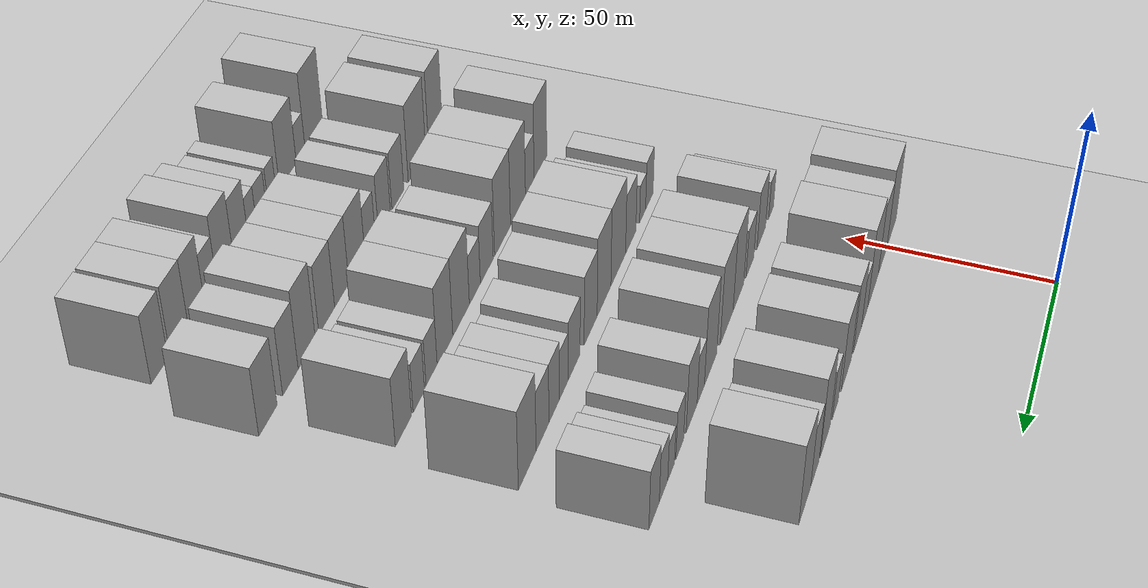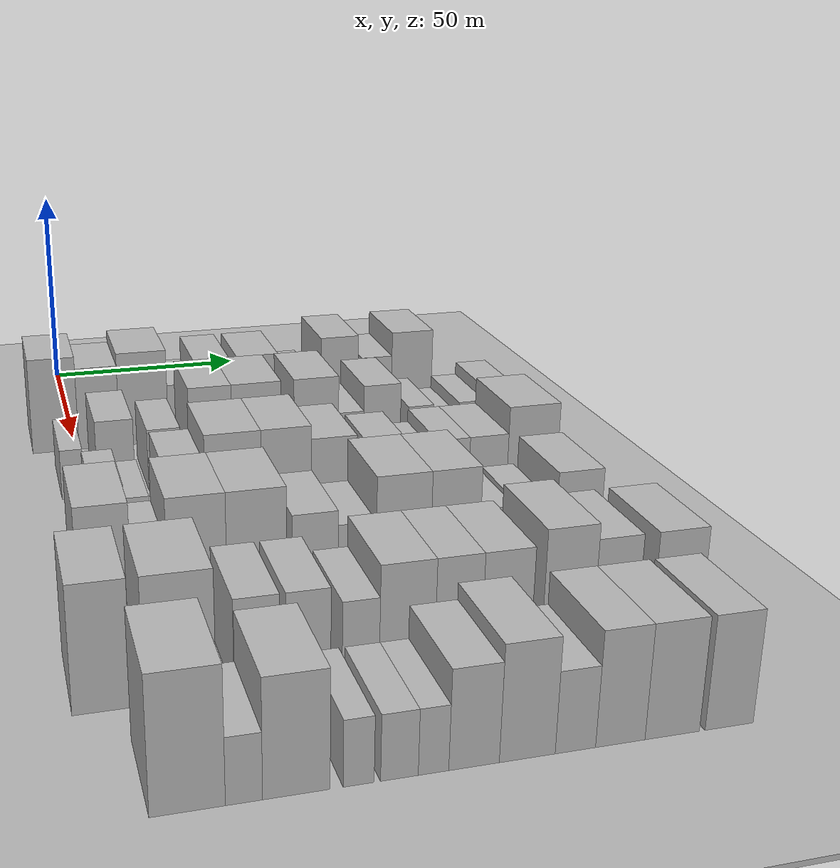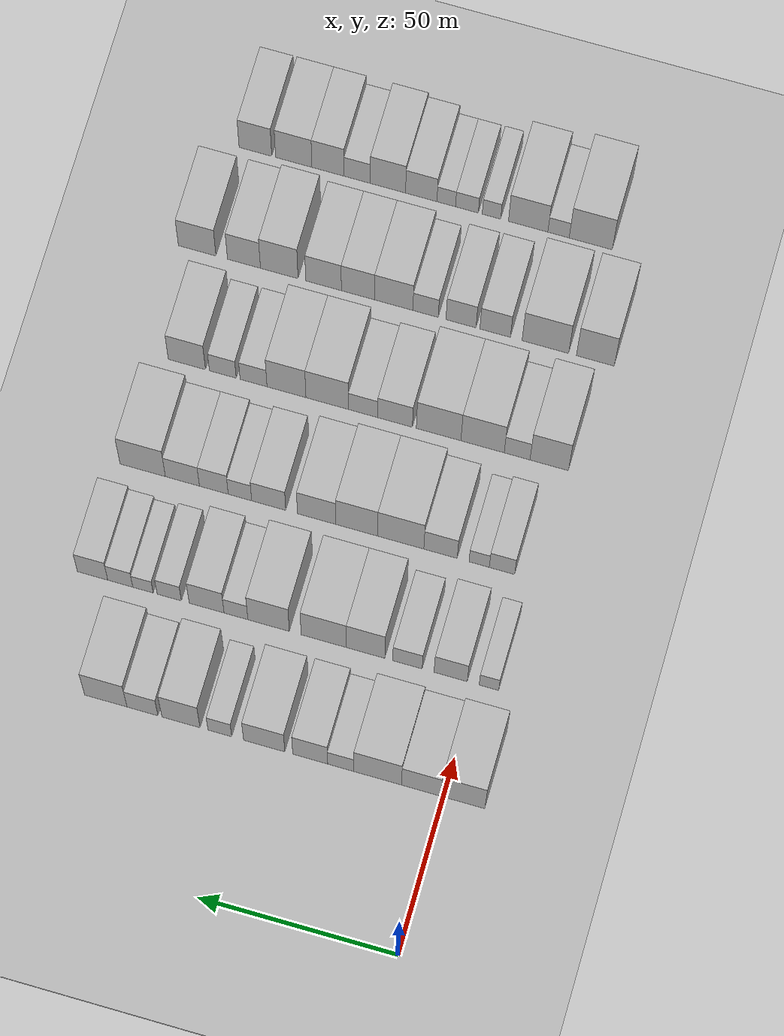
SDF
<sdf version="1.6">
 <world name="default">
  <include><name>ground_plane_1</name><uri>model://HANNAS_ground_plane</uri></include>
  <include>
   <name>ground_plane_2</name>
   <uri>model://HANNAS_ground_plane</uri>
   <pose>100 0 0  0 0 0</pose>
  </include>
  <model name="building_57">
   <static>1</static>
   <pose>50.0000 -4.7983 0 0.000000 0.000000 0.000000</pose>
   <link name="link">
    <pose>0 0 12.00 0 0 0</pose>
    <collision name="collision"><geometry><box><size>20.0000 11.0137 24.0000</size></box></geometry></collision>
    <visual name="visual">
     <cast_shadows>0</cast_shadows>
     <geometry><box><size>20.0000 11.0137 24.0000</size></box></geometry>
     <material>
      <script>
       <uri>model://HANNAS_wall/materials/scripts</uri>
       <uri>model://HANNAS_wall/materials/textures</uri>
       <name>vrc/HANNAS_wall</name>
      </script>
     </material>
    </visual>
   </link>
  </model>
  <model name="building_58">
   <static>1</static>
   <pose>50.0000 5.6625 0 0.000000 0.000000 0.000000</pose>
   <link name="link">
    <pose>0 0 10.50 0 0 0</pose>
    <collision name="collision"><geometry><box><size>20.0000 9.9080 21.0000</size></box></geometry></collision>
    <visual name="visual">
     <cast_shadows>0</cast_shadows>
     <geometry><box><size>20.0000 9.9080 21.0000</size></box></geometry>
     <material>
      <script>
       <uri>model://HANNAS_wall/materials/scripts</uri>
       <uri>model://HANNAS_wall/materials/textures</uri>
       <name>vrc/HANNAS_wall</name>
      </script>
     </material>
    </visual>
   </link>
  </model>
  <model name="building_59">
   <static>1</static>
   <pose>50.0000 16.5952 0 0.000000 0.000000 0.000000</pose>
   <link name="link">
    <pose>0 0 12.00 0 0 0</pose>
    <collision name="collision"><geometry><box><size>20.0000 11.9573 24.0000</size></box></geometry></collision>
    <visual name="visual">
     <cast_shadows>0</cast_shadows>
     <geometry><box><size>20.0000 11.9573 24.0000</size></box></geometry>
     <material>
      <script>
       <uri>model://HANNAS_wall/materials/scripts</uri>
       <uri>model://HANNAS_wall/materials/textures</uri>
       <name>vrc/HANNAS_wall</name>
      </script>
     </material>
    </visual>
   </link>
  </model>
  <model name="building_60">
   <static>1</static>
   <pose>50.0000 25.8689 0 0.000000 0.000000 0.000000</pose>
   <link name="link">
    <pose>0 0 7.50 0 0 0</pose>
    <collision name="collision"><geometry><box><size>20.0000 6.5901 15.0000</size></box></geometry></collision>
    <visual name="visual">
     <cast_shadows>0</cast_shadows>
     <geometry><box><size>20.0000 6.5901 15.0000</size></box></geometry>
     <material>
      <script>
       <uri>model://HANNAS_wall/materials/scripts</uri>
       <uri>model://HANNAS_wall/materials/textures</uri>
       <name>vrc/HANNAS_wall</name>
      </script>
     </material>
    </visual>
   </link>
  </model>
  <model name="building_61">
   <static>1</static>
   <pose>50.0000 33.5676 0 0.000000 0.000000 0.000000</pose>
   <link name="link">
    <pose>0 0 10.50 0 0 0</pose>
    <collision name="collision"><geometry><box><size>20.0000 8.8073 21.0000</size></box></geometry></collision>
    <visual name="visual">
     <cast_shadows>0</cast_shadows>
     <geometry><box><size>20.0000 8.8073 21.0000</size></box></geometry>
     <material>
      <script>
       <uri>model://HANNAS_wall/materials/scripts</uri>
       <uri>model://HANNAS_wall/materials/textures</uri>
       <name>vrc/HANNAS_wall</name>
      </script>
     </material>
    </visual>
   </link>
  </model>
  <model name="building_62">
   <static>1</static>
   <pose>50.0000 45.1729 0 0.000000 0.000000 0.000000</pose>
   <link name="link">
    <pose>0 0 10.50 0 0 0</pose>
    <collision name="collision"><geometry><box><size>20.0000 10.4034 21.0000</size></box></geometry></collision>
    <visual name="visual">
     <cast_shadows>0</cast_shadows>
     <geometry><box><size>20.0000 10.4034 21.0000</size></box></geometry>
     <material>
      <script>
       <uri>model://HANNAS_wall/materials/scripts</uri>
       <uri>model://HANNAS_wall/materials/textures</uri>
       <name>vrc/HANNAS_wall</name>
      </script>
     </material>
    </visual>
   </link>
  </model>
  <model name="building_63">
   <static>1</static>
   <pose>50.0000 56.3753 0 0.000000 0.000000 0.000000</pose>
   <link name="link">
    <pose>0 0 7.50 0 0 0</pose>
    <collision name="collision"><geometry><box><size>20.0000 6.0014 15.0000</size></box></geometry></collision>
    <visual name="visual">
     <cast_shadows>0</cast_shadows>
     <geometry><box><size>20.0000 6.0014 15.0000</size></box></geometry>
     <material>
      <script>
       <uri>model://HANNAS_wall/materials/scripts</uri>
       <uri>model://HANNAS_wall/materials/textures</uri>
       <name>vrc/HANNAS_wall</name>
      </script>
     </material>
    </visual>
   </link>
  </model>
  <model name="building_64">
   <static>1</static>
   <pose>50.0000 66.2069 0 0.000000 0.000000 0.000000</pose>
   <link name="link">
    <pose>0 0 12.00 0 0 0</pose>
    <collision name="collision"><geometry><box><size>20.0000 9.6620 24.0000</size></box></geometry></collision>
    <visual name="visual">
     <cast_shadows>0</cast_shadows>
     <geometry><box><size>20.0000 9.6620 24.0000</size></box></geometry>
     <material>
      <script>
       <uri>model://HANNAS_wall/materials/scripts</uri>
       <uri>model://HANNAS_wall/materials/textures</uri>
       <name>vrc/HANNAS_wall</name>
      </script>
     </material>
    </visual>
   </link>
  </model>
  <model name="building_65">
   <static>1</static>
   <pose>50.0000 75.9701 0 0.000000 0.000000 0.000000</pose>
   <link name="link">
    <pose>0 0 9.00 0 0 0</pose>
    <collision name="collision"><geometry><box><size>20.0000 7.8644 18.0000</size></box></geometry></collision>
    <visual name="visual">
     <cast_shadows>0</cast_shadows>
     <geometry><box><size>20.0000 7.8644 18.0000</size></box></geometry>
     <material>
      <script>
       <uri>model://HANNAS_wall/materials/scripts</uri>
       <uri>model://HANNAS_wall/materials/textures</uri>
       <name>vrc/HANNAS_wall</name>
      </script>
     </material>
    </visual>
   </link>
  </model>
  <model name="building_66">
   <static>1</static>
   <pose>50.0000 85.2618 0 0.000000 0.000000 0.000000</pose>
   <link name="link">
    <pose>0 0 12.00 0 0 0</pose>
    <collision name="collision"><geometry><box><size>20.0000 10.7190 24.0000</size></box></geometry></collision>
    <visual name="visual">
     <cast_shadows>0</cast_shadows>
     <geometry><box><size>20.0000 10.7190 24.0000</size></box></geometry>
     <material>
      <script>
       <uri>model://HANNAS_wall/materials/scripts</uri>
       <uri>model://HANNAS_wall/materials/textures</uri>
       <name>vrc/HANNAS_wall</name>
      </script>
     </material>
    </visual>
   </link>
  </model>
  <model name="building_170">
   <static>1</static>
   <pose>79.0000 -3.1844 0 0.000000 0.000000 0.000000</pose>
   <link name="link">
    <pose>0 0 6.00 0 0 0</pose>
    <collision name="collision"><geometry><box><size>20.0000 4.9274 12.0000</size></box></geometry></collision>
    <visual name="visual">
     <cast_shadows>0</cast_shadows>
     <geometry><box><size>20.0000 4.9274 12.0000</size></box></geometry>
     <material>
      <script>
       <uri>model://HANNAS_wall/materials/scripts</uri>
       <uri>model://HANNAS_wall/materials/textures</uri>
       <name>vrc/HANNAS_wall</name>
      </script>
     </material>
    </visual>
   </link>
  </model>
  <model name="building_171">
   <static>1</static>
   <pose>79.0000 6.4791 0 0.000000 0.000000 0.000000</pose>
   <link name="link">
    <pose>0 0 9.00 0 0 0</pose>
    <collision name="collision"><geometry><box><size>20.0000 8.3995 18.0000</size></box></geometry></collision>
    <visual name="visual">
     <cast_shadows>0</cast_shadows>
     <geometry><box><size>20.0000 8.3995 18.0000</size></box></geometry>
     <material>
      <script>
       <uri>model://HANNAS_wall/materials/scripts</uri>
       <uri>model://HANNAS_wall/materials/textures</uri>
       <name>vrc/HANNAS_wall</name>
      </script>
     </material>
    </visual>
   </link>
  </model>
  <model name="building_172">
   <static>1</static>
   <pose>79.0000 17.4072 0 0.000000 0.000000 0.000000</pose>
   <link name="link">
    <pose>0 0 7.50 0 0 0</pose>
    <collision name="collision"><geometry><box><size>20.0000 7.4567 15.0000</size></box></geometry></collision>
    <visual name="visual">
     <cast_shadows>0</cast_shadows>
     <geometry><box><size>20.0000 7.4567 15.0000</size></box></geometry>
     <material>
      <script>
       <uri>model://HANNAS_wall/materials/scripts</uri>
       <uri>model://HANNAS_wall/materials/textures</uri>
       <name>vrc/HANNAS_wall</name>
      </script>
     </material>
    </visual>
   </link>
  </model>
  <model name="building_173">
   <static>1</static>
   <pose>79.0000 28.0051 0 0.000000 0.000000 0.000000</pose>
   <link name="link">
    <pose>0 0 12.00 0 0 0</pose>
    <collision name="collision"><geometry><box><size>20.0000 9.7390 24.0000</size></box></geometry></collision>
    <visual name="visual">
     <cast_shadows>0</cast_shadows>
     <geometry><box><size>20.0000 9.7390 24.0000</size></box></geometry>
     <material>
      <script>
       <uri>model://HANNAS_wall/materials/scripts</uri>
       <uri>model://HANNAS_wall/materials/textures</uri>
       <name>vrc/HANNAS_wall</name>
      </script>
     </material>
    </visual>
   </link>
  </model>
  <model name="building_174">
   <static>1</static>
   <pose>79.0000 38.6088 0 0.000000 0.000000 0.000000</pose>
   <link name="link">
    <pose>0 0 12.00 0 0 0</pose>
    <collision name="collision"><geometry><box><size>20.0000 11.4685 24.0000</size></box></geometry></collision>
    <visual name="visual">
     <cast_shadows>0</cast_shadows>
     <geometry><box><size>20.0000 11.4685 24.0000</size></box></geometry>
     <material>
      <script>
       <uri>model://HANNAS_wall/materials/scripts</uri>
       <uri>model://HANNAS_wall/materials/textures</uri>
       <name>vrc/HANNAS_wall</name>
      </script>
     </material>
    </visual>
   </link>
  </model>
  <model name="building_175">
   <static>1</static>
   <pose>79.0000 52.6056 0 0.000000 0.000000 0.000000</pose>
   <link name="link">
    <pose>0 0 12.00 0 0 0</pose>
    <collision name="collision"><geometry><box><size>20.0000 10.5251 24.0000</size></box></geometry></collision>
    <visual name="visual">
     <cast_shadows>0</cast_shadows>
     <geometry><box><size>20.0000 10.5251 24.0000</size></box></geometry>
     <material>
      <script>
       <uri>model://HANNAS_wall/materials/scripts</uri>
       <uri>model://HANNAS_wall/materials/textures</uri>
       <name>vrc/HANNAS_wall</name>
      </script>
     </material>
    </visual>
   </link>
  </model>
  <model name="building_176">
   <static>1</static>
   <pose>79.0000 60.9086 0 0.000000 0.000000 0.000000</pose>
   <link name="link">
    <pose>0 0 7.50 0 0 0</pose>
    <collision name="collision"><geometry><box><size>20.0000 6.0808 15.0000</size></box></geometry></collision>
    <visual name="visual">
     <cast_shadows>0</cast_shadows>
     <geometry><box><size>20.0000 6.0808 15.0000</size></box></geometry>
     <material>
      <script>
       <uri>model://HANNAS_wall/materials/scripts</uri>
       <uri>model://HANNAS_wall/materials/textures</uri>
       <name>vrc/HANNAS_wall</name>
      </script>
     </material>
    </visual>
   </link>
  </model>
  <model name="building_177">
   <static>1</static>
   <pose>79.0000 68.3858 0 0.000000 0.000000 0.000000</pose>
   <link name="link">
    <pose>0 0 10.50 0 0 0</pose>
    <collision name="collision"><geometry><box><size>20.0000 8.8737 21.0000</size></box></geometry></collision>
    <visual name="visual">
     <cast_shadows>0</cast_shadows>
     <geometry><box><size>20.0000 8.8737 21.0000</size></box></geometry>
     <material>
      <script>
       <uri>model://HANNAS_wall/materials/scripts</uri>
       <uri>model://HANNAS_wall/materials/textures</uri>
       <name>vrc/HANNAS_wall</name>
      </script>
     </material>
    </visual>
   </link>
  </model>
  <model name="building_178">
   <static>1</static>
   <pose>79.0000 77.9151 0 0.000000 0.000000 0.000000</pose>
   <link name="link">
    <pose>0 0 7.50 0 0 0</pose>
    <collision name="collision"><geometry><box><size>20.0000 6.1849 15.0000</size></box></geometry></collision>
    <visual name="visual">
     <cast_shadows>0</cast_shadows>
     <geometry><box><size>20.0000 6.1849 15.0000</size></box></geometry>
     <material>
      <script>
       <uri>model://HANNAS_wall/materials/scripts</uri>
       <uri>model://HANNAS_wall/materials/textures</uri>
       <name>vrc/HANNAS_wall</name>
      </script>
     </material>
    </visual>
   </link>
  </model>
  <model name="building_179">
   <static>1</static>
   <pose>79.0000 84.6122 0 0.000000 0.000000 0.000000</pose>
   <link name="link">
    <pose>0 0 6.00 0 0 0</pose>
    <collision name="collision"><geometry><box><size>20.0000 5.2093 12.0000</size></box></geometry></collision>
    <visual name="visual">
     <cast_shadows>0</cast_shadows>
     <geometry><box><size>20.0000 5.2093 12.0000</size></box></geometry>
     <material>
      <script>
       <uri>model://HANNAS_wall/materials/scripts</uri>
       <uri>model://HANNAS_wall/materials/textures</uri>
       <name>vrc/HANNAS_wall</name>
      </script>
     </material>
    </visual>
   </link>
  </model>
  <model name="building_180">
   <static>1</static>
   <pose>79.0000 90.4151 0 0.000000 0.000000 0.000000</pose>
   <link name="link">
    <pose>0 0 7.50 0 0 0</pose>
    <collision name="collision"><geometry><box><size>20.0000 6.3964 15.0000</size></box></geometry></collision>
    <visual name="visual">
     <cast_shadows>0</cast_shadows>
     <geometry><box><size>20.0000 6.3964 15.0000</size></box></geometry>
     <material>
      <script>
       <uri>model://HANNAS_wall/materials/scripts</uri>
       <uri>model://HANNAS_wall/materials/textures</uri>
       <name>vrc/HANNAS_wall</name>
      </script>
     </material>
    </visual>
   </link>
  </model>
  <model name="building_181">
   <static>1</static>
   <pose>79.0000 97.4869 0 0.000000 0.000000 0.000000</pose>
   <link name="link">
    <pose>0 0 9.00 0 0 0</pose>
    <collision name="collision"><geometry><box><size>20.0000 7.7473 18.0000</size></box></geometry></collision>
    <visual name="visual">
     <cast_shadows>0</cast_shadows>
     <geometry><box><size>20.0000 7.7473 18.0000</size></box></geometry>
     <material>
      <script>
       <uri>model://HANNAS_wall/materials/scripts</uri>
       <uri>model://HANNAS_wall/materials/textures</uri>
       <name>vrc/HANNAS_wall</name>
      </script>
     </material>
    </visual>
   </link>
  </model>
  <model name="building_283">
   <static>1</static>
   <pose>108.0000 1.6561 0 0.000000 0.000000 0.000000</pose>
   <link name="link">
    <pose>0 0 7.50 0 0 0</pose>
    <collision name="collision"><geometry><box><size>20.0000 6.4531 15.0000</size></box></geometry></collision>
    <visual name="visual">
     <cast_shadows>0</cast_shadows>
     <geometry><box><size>20.0000 6.4531 15.0000</size></box></geometry>
     <material>
      <script>
       <uri>model://HANNAS_wall/materials/scripts</uri>
       <uri>model://HANNAS_wall/materials/textures</uri>
       <name>vrc/HANNAS_wall</name>
      </script>
     </material>
    </visual>
   </link>
  </model>
  <model name="building_284">
   <static>1</static>
   <pose>108.0000 7.4560 0 0.000000 0.000000 0.000000</pose>
   <link name="link">
    <pose>0 0 6.00 0 0 0</pose>
    <collision name="collision"><geometry><box><size>20.0000 5.1467 12.0000</size></box></geometry></collision>
    <visual name="visual">
     <cast_shadows>0</cast_shadows>
     <geometry><box><size>20.0000 5.1467 12.0000</size></box></geometry>
     <material>
      <script>
       <uri>model://HANNAS_wall/materials/scripts</uri>
       <uri>model://HANNAS_wall/materials/textures</uri>
       <name>vrc/HANNAS_wall</name>
      </script>
     </material>
    </visual>
   </link>
  </model>
  <model name="building_285">
   <static>1</static>
   <pose>108.0000 17.2810 0 0.000000 0.000000 0.000000</pose>
   <link name="link">
    <pose>0 0 9.00 0 0 0</pose>
    <collision name="collision"><geometry><box><size>20.0000 8.5032 18.0000</size></box></geometry></collision>
    <visual name="visual">
     <cast_shadows>0</cast_shadows>
     <geometry><box><size>20.0000 8.5032 18.0000</size></box></geometry>
     <material>
      <script>
       <uri>model://HANNAS_wall/materials/scripts</uri>
       <uri>model://HANNAS_wall/materials/textures</uri>
       <name>vrc/HANNAS_wall</name>
      </script>
     </material>
    </visual>
   </link>
  </model>
  <model name="building_286">
   <static>1</static>
   <pose>108.0000 27.4141 0 0.000000 0.000000 0.000000</pose>
   <link name="link">
    <pose>0 0 12.00 0 0 0</pose>
    <collision name="collision"><geometry><box><size>20.0000 11.7630 24.0000</size></box></geometry></collision>
    <visual name="visual">
     <cast_shadows>0</cast_shadows>
     <geometry><box><size>20.0000 11.7630 24.0000</size></box></geometry>
     <material>
      <script>
       <uri>model://HANNAS_wall/materials/scripts</uri>
       <uri>model://HANNAS_wall/materials/textures</uri>
       <name>vrc/HANNAS_wall</name>
      </script>
     </material>
    </visual>
   </link>
  </model>
  <model name="building_287">
   <static>1</static>
   <pose>108.0000 38.6370 0 0.000000 0.000000 0.000000</pose>
   <link name="link">
    <pose>0 0 12.00 0 0 0</pose>
    <collision name="collision"><geometry><box><size>20.0000 10.6828 24.0000</size></box></geometry></collision>
    <visual name="visual">
     <cast_shadows>0</cast_shadows>
     <geometry><box><size>20.0000 10.6828 24.0000</size></box></geometry>
     <material>
      <script>
       <uri>model://HANNAS_wall/materials/scripts</uri>
       <uri>model://HANNAS_wall/materials/textures</uri>
       <name>vrc/HANNAS_wall</name>
      </script>
     </material>
    </visual>
   </link>
  </model>
  <model name="building_288">
   <static>1</static>
   <pose>108.0000 48.8752 0 0.000000 0.000000 0.000000</pose>
   <link name="link">
    <pose>0 0 10.50 0 0 0</pose>
    <collision name="collision"><geometry><box><size>20.0000 9.7936 21.0000</size></box></geometry></collision>
    <visual name="visual">
     <cast_shadows>0</cast_shadows>
     <geometry><box><size>20.0000 9.7936 21.0000</size></box></geometry>
     <material>
      <script>
       <uri>model://HANNAS_wall/materials/scripts</uri>
       <uri>model://HANNAS_wall/materials/textures</uri>
       <name>vrc/HANNAS_wall</name>
      </script>
     </material>
    </visual>
   </link>
  </model>
  <model name="building_289">
   <static>1</static>
   <pose>108.0000 61.1291 0 0.000000 0.000000 0.000000</pose>
   <link name="link">
    <pose>0 0 9.00 0 0 0</pose>
    <collision name="collision"><geometry><box><size>20.0000 8.7141 18.0000</size></box></geometry></collision>
    <visual name="visual">
     <cast_shadows>0</cast_shadows>
     <geometry><box><size>20.0000 8.7141 18.0000</size></box></geometry>
     <material>
      <script>
       <uri>model://HANNAS_wall/materials/scripts</uri>
       <uri>model://HANNAS_wall/materials/textures</uri>
       <name>vrc/HANNAS_wall</name>
      </script>
     </material>
    </visual>
   </link>
  </model>
  <model name="building_290">
   <static>1</static>
   <pose>108.0000 68.4956 0 0.000000 0.000000 0.000000</pose>
   <link name="link">
    <pose>0 0 7.50 0 0 0</pose>
    <collision name="collision"><geometry><box><size>20.0000 6.0188 15.0000</size></box></geometry></collision>
    <visual name="visual">
     <cast_shadows>0</cast_shadows>
     <geometry><box><size>20.0000 6.0188 15.0000</size></box></geometry>
     <material>
      <script>
       <uri>model://HANNAS_wall/materials/scripts</uri>
       <uri>model://HANNAS_wall/materials/textures</uri>
       <name>vrc/HANNAS_wall</name>
      </script>
     </material>
    </visual>
   </link>
  </model>
  <model name="building_291">
   <static>1</static>
   <pose>108.0000 75.1930 0 0.000000 0.000000 0.000000</pose>
   <link name="link">
    <pose>0 0 9.00 0 0 0</pose>
    <collision name="collision"><geometry><box><size>20.0000 7.3761 18.0000</size></box></geometry></collision>
    <visual name="visual">
     <cast_shadows>0</cast_shadows>
     <geometry><box><size>20.0000 7.3761 18.0000</size></box></geometry>
     <material>
      <script>
       <uri>model://HANNAS_wall/materials/scripts</uri>
       <uri>model://HANNAS_wall/materials/textures</uri>
       <name>vrc/HANNAS_wall</name>
      </script>
     </material>
    </visual>
   </link>
  </model>
  <model name="building_292">
   <static>1</static>
   <pose>108.0000 83.2609 0 0.000000 0.000000 0.000000</pose>
   <link name="link">
    <pose>0 0 9.00 0 0 0</pose>
    <collision name="collision"><geometry><box><size>20.0000 8.7597 18.0000</size></box></geometry></collision>
    <visual name="visual">
     <cast_shadows>0</cast_shadows>
     <geometry><box><size>20.0000 8.7597 18.0000</size></box></geometry>
     <material>
      <script>
       <uri>model://HANNAS_wall/materials/scripts</uri>
       <uri>model://HANNAS_wall/materials/textures</uri>
       <name>vrc/HANNAS_wall</name>
      </script>
     </material>
    </visual>
   </link>
  </model>
  <model name="building_293">
   <static>1</static>
   <pose>108.0000 93.4723 0 0.000000 0.000000 0.000000</pose>
   <link name="link">
    <pose>0 0 12.00 0 0 0</pose>
    <collision name="collision"><geometry><box><size>20.0000 11.6630 24.0000</size></box></geometry></collision>
    <visual name="visual">
     <cast_shadows>0</cast_shadows>
     <geometry><box><size>20.0000 11.6630 24.0000</size></box></geometry>
     <material>
      <script>
       <uri>model://HANNAS_wall/materials/scripts</uri>
       <uri>model://HANNAS_wall/materials/textures</uri>
       <name>vrc/HANNAS_wall</name>
      </script>
     </material>
    </visual>
   </link>
  </model>
  <model name="building_391">
   <static>1</static>
   <pose>137.0000 -2.2840 0 0.000000 0.000000 0.000000</pose>
   <link name="link">
    <pose>0 0 12.00 0 0 0</pose>
    <collision name="collision"><geometry><box><size>20.0000 9.8416 24.0000</size></box></geometry></collision>
    <visual name="visual">
     <cast_shadows>0</cast_shadows>
     <geometry><box><size>20.0000 9.8416 24.0000</size></box></geometry>
     <material>
      <script>
       <uri>model://HANNAS_wall/materials/scripts</uri>
       <uri>model://HANNAS_wall/materials/textures</uri>
       <name>vrc/HANNAS_wall</name>
      </script>
     </material>
    </visual>
   </link>
  </model>
  <model name="building_392">
   <static>1</static>
   <pose>137.0000 5.9213 0 0.000000 0.000000 0.000000</pose>
   <link name="link">
    <pose>0 0 7.50 0 0 0</pose>
    <collision name="collision"><geometry><box><size>20.0000 6.5691 15.0000</size></box></geometry></collision>
    <visual name="visual">
     <cast_shadows>0</cast_shadows>
     <geometry><box><size>20.0000 6.5691 15.0000</size></box></geometry>
     <material>
      <script>
       <uri>model://HANNAS_wall/materials/scripts</uri>
       <uri>model://HANNAS_wall/materials/textures</uri>
       <name>vrc/HANNAS_wall</name>
      </script>
     </material>
    </visual>
   </link>
  </model>
  <model name="building_393">
   <static>1</static>
   <pose>137.0000 14.7529 0 0.000000 0.000000 0.000000</pose>
   <link name="link">
    <pose>0 0 12.00 0 0 0</pose>
    <collision name="collision"><geometry><box><size>20.0000 11.0941 24.0000</size></box></geometry></collision>
    <visual name="visual">
     <cast_shadows>0</cast_shadows>
     <geometry><box><size>20.0000 11.0941 24.0000</size></box></geometry>
     <material>
      <script>
       <uri>model://HANNAS_wall/materials/scripts</uri>
       <uri>model://HANNAS_wall/materials/textures</uri>
       <name>vrc/HANNAS_wall</name>
      </script>
     </material>
    </visual>
   </link>
  </model>
  <model name="building_394">
   <static>1</static>
   <pose>137.0000 26.0189 0 0.000000 0.000000 0.000000</pose>
   <link name="link">
    <pose>0 0 12.00 0 0 0</pose>
    <collision name="collision"><geometry><box><size>20.0000 11.4378 24.0000</size></box></geometry></collision>
    <visual name="visual">
     <cast_shadows>0</cast_shadows>
     <geometry><box><size>20.0000 11.4378 24.0000</size></box></geometry>
     <material>
      <script>
       <uri>model://HANNAS_wall/materials/scripts</uri>
       <uri>model://HANNAS_wall/materials/textures</uri>
       <name>vrc/HANNAS_wall</name>
      </script>
     </material>
    </visual>
   </link>
  </model>
  <model name="building_395">
   <static>1</static>
   <pose>137.0000 37.2032 0 0.000000 0.000000 0.000000</pose>
   <link name="link">
    <pose>0 0 9.00 0 0 0</pose>
    <collision name="collision"><geometry><box><size>20.0000 8.9308 18.0000</size></box></geometry></collision>
    <visual name="visual">
     <cast_shadows>0</cast_shadows>
     <geometry><box><size>20.0000 8.9308 18.0000</size></box></geometry>
     <material>
      <script>
       <uri>model://HANNAS_wall/materials/scripts</uri>
       <uri>model://HANNAS_wall/materials/textures</uri>
       <name>vrc/HANNAS_wall</name>
      </script>
     </material>
    </visual>
   </link>
  </model>
  <model name="building_396">
   <static>1</static>
   <pose>137.0000 45.4095 0 0.000000 0.000000 0.000000</pose>
   <link name="link">
    <pose>0 0 7.50 0 0 0</pose>
    <collision name="collision"><geometry><box><size>20.0000 7.4818 15.0000</size></box></geometry></collision>
    <visual name="visual">
     <cast_shadows>0</cast_shadows>
     <geometry><box><size>20.0000 7.4818 15.0000</size></box></geometry>
     <material>
      <script>
       <uri>model://HANNAS_wall/materials/scripts</uri>
       <uri>model://HANNAS_wall/materials/textures</uri>
       <name>vrc/HANNAS_wall</name>
      </script>
     </material>
    </visual>
   </link>
  </model>
  <model name="building_397">
   <static>1</static>
   <pose>137.0000 54.6229 0 0.000000 0.000000 0.000000</pose>
   <link name="link">
    <pose>0 0 12.00 0 0 0</pose>
    <collision name="collision"><geometry><box><size>20.0000 10.9449 24.0000</size></box></geometry></collision>
    <visual name="visual">
     <cast_shadows>0</cast_shadows>
     <geometry><box><size>20.0000 10.9449 24.0000</size></box></geometry>
     <material>
      <script>
       <uri>model://HANNAS_wall/materials/scripts</uri>
       <uri>model://HANNAS_wall/materials/textures</uri>
       <name>vrc/HANNAS_wall</name>
      </script>
     </material>
    </visual>
   </link>
  </model>
  <model name="building_398">
   <static>1</static>
   <pose>137.0000 65.1071 0 0.000000 0.000000 0.000000</pose>
   <link name="link">
    <pose>0 0 12.00 0 0 0</pose>
    <collision name="collision"><geometry><box><size>20.0000 10.0236 24.0000</size></box></geometry></collision>
    <visual name="visual">
     <cast_shadows>0</cast_shadows>
     <geometry><box><size>20.0000 10.0236 24.0000</size></box></geometry>
     <material>
      <script>
       <uri>model://HANNAS_wall/materials/scripts</uri>
       <uri>model://HANNAS_wall/materials/textures</uri>
       <name>vrc/HANNAS_wall</name>
      </script>
     </material>
    </visual>
   </link>
  </model>
  <model name="building_399">
   <static>1</static>
   <pose>137.0000 73.5882 0 0.000000 0.000000 0.000000</pose>
   <link name="link">
    <pose>0 0 7.50 0 0 0</pose>
    <collision name="collision"><geometry><box><size>20.0000 6.9386 15.0000</size></box></geometry></collision>
    <visual name="visual">
     <cast_shadows>0</cast_shadows>
     <geometry><box><size>20.0000 6.9386 15.0000</size></box></geometry>
     <material>
      <script>
       <uri>model://HANNAS_wall/materials/scripts</uri>
       <uri>model://HANNAS_wall/materials/textures</uri>
       <name>vrc/HANNAS_wall</name>
      </script>
     </material>
    </visual>
   </link>
  </model>
  <model name="building_400">
   <static>1</static>
   <pose>137.0000 81.5265 0 0.000000 0.000000 0.000000</pose>
   <link name="link">
    <pose>0 0 7.50 0 0 0</pose>
    <collision name="collision"><geometry><box><size>20.0000 6.9379 15.0000</size></box></geometry></collision>
    <visual name="visual">
     <cast_shadows>0</cast_shadows>
     <geometry><box><size>20.0000 6.9379 15.0000</size></box></geometry>
     <material>
      <script>
       <uri>model://HANNAS_wall/materials/scripts</uri>
       <uri>model://HANNAS_wall/materials/textures</uri>
       <name>vrc/HANNAS_wall</name>
      </script>
     </material>
    </visual>
   </link>
  </model>
  <model name="building_401">
   <static>1</static>
   <pose>137.0000 90.7979 0 0.000000 0.000000 0.000000</pose>
   <link name="link">
    <pose>0 0 10.50 0 0 0</pose>
    <collision name="collision"><geometry><box><size>20.0000 9.6050 21.0000</size></box></geometry></collision>
    <visual name="visual">
     <cast_shadows>0</cast_shadows>
     <geometry><box><size>20.0000 9.6050 21.0000</size></box></geometry>
     <material>
      <script>
       <uri>model://HANNAS_wall/materials/scripts</uri>
       <uri>model://HANNAS_wall/materials/textures</uri>
       <name>vrc/HANNAS_wall</name>
      </script>
     </material>
    </visual>
   </link>
  </model>
  <model name="building_505">
   <static>1</static>
   <pose>166.0000 -6.1053 0 0.000000 0.000000 0.000000</pose>
   <link name="link">
    <pose>0 0 12.00 0 0 0</pose>
    <collision name="collision"><geometry><box><size>20.0000 9.7061 24.0000</size></box></geometry></collision>
    <visual name="visual">
     <cast_shadows>0</cast_shadows>
     <geometry><box><size>20.0000 9.7061 24.0000</size></box></geometry>
     <material>
      <script>
       <uri>model://HANNAS_wall/materials/scripts</uri>
       <uri>model://HANNAS_wall/materials/textures</uri>
       <name>vrc/HANNAS_wall</name>
      </script>
     </material>
    </visual>
   </link>
  </model>
  <model name="building_506">
   <static>1</static>
   <pose>166.0000 6.7424 0 0.000000 0.000000 0.000000</pose>
   <link name="link">
    <pose>0 0 12.00 0 0 0</pose>
    <collision name="collision"><geometry><box><size>20.0000 11.9894 24.0000</size></box></geometry></collision>
    <visual name="visual">
     <cast_shadows>0</cast_shadows>
     <geometry><box><size>20.0000 11.9894 24.0000</size></box></geometry>
     <material>
      <script>
       <uri>model://HANNAS_wall/materials/scripts</uri>
       <uri>model://HANNAS_wall/materials/textures</uri>
       <name>vrc/HANNAS_wall</name>
      </script>
     </material>
    </visual>
   </link>
  </model>
  <model name="building_507">
   <static>1</static>
   <pose>166.0000 19.6723 0 0.000000 0.000000 0.000000</pose>
   <link name="link">
    <pose>0 0 9.00 0 0 0</pose>
    <collision name="collision"><geometry><box><size>20.0000 7.8706 18.0000</size></box></geometry></collision>
    <visual name="visual">
     <cast_shadows>0</cast_shadows>
     <geometry><box><size>20.0000 7.8706 18.0000</size></box></geometry>
     <material>
      <script>
       <uri>model://HANNAS_wall/materials/scripts</uri>
       <uri>model://HANNAS_wall/materials/textures</uri>
       <name>vrc/HANNAS_wall</name>
      </script>
     </material>
    </visual>
   </link>
  </model>
  <model name="building_508">
   <static>1</static>
   <pose>166.0000 28.4803 0 0.000000 0.000000 0.000000</pose>
   <link name="link">
    <pose>0 0 9.00 0 0 0</pose>
    <collision name="collision"><geometry><box><size>20.0000 7.7455 18.0000</size></box></geometry></collision>
    <visual name="visual">
     <cast_shadows>0</cast_shadows>
     <geometry><box><size>20.0000 7.7455 18.0000</size></box></geometry>
     <material>
      <script>
       <uri>model://HANNAS_wall/materials/scripts</uri>
       <uri>model://HANNAS_wall/materials/textures</uri>
       <name>vrc/HANNAS_wall</name>
      </script>
     </material>
    </visual>
   </link>
  </model>
  <model name="building_509">
   <static>1</static>
   <pose>166.0000 37.6300 0 0.000000 0.000000 0.000000</pose>
   <link name="link">
    <pose>0 0 7.50 0 0 0</pose>
    <collision name="collision"><geometry><box><size>20.0000 6.5539 15.0000</size></box></geometry></collision>
    <visual name="visual">
     <cast_shadows>0</cast_shadows>
     <geometry><box><size>20.0000 6.5539 15.0000</size></box></geometry>
     <material>
      <script>
       <uri>model://HANNAS_wall/materials/scripts</uri>
       <uri>model://HANNAS_wall/materials/textures</uri>
       <name>vrc/HANNAS_wall</name>
      </script>
     </material>
    </visual>
   </link>
  </model>
  <model name="building_510">
   <static>1</static>
   <pose>166.0000 45.8739 0 0.000000 0.000000 0.000000</pose>
   <link name="link">
    <pose>0 0 10.50 0 0 0</pose>
    <collision name="collision"><geometry><box><size>20.0000 9.9338 21.0000</size></box></geometry></collision>
    <visual name="visual">
     <cast_shadows>0</cast_shadows>
     <geometry><box><size>20.0000 9.9338 21.0000</size></box></geometry>
     <material>
      <script>
       <uri>model://HANNAS_wall/materials/scripts</uri>
       <uri>model://HANNAS_wall/materials/textures</uri>
       <name>vrc/HANNAS_wall</name>
      </script>
     </material>
    </visual>
   </link>
  </model>
  <model name="building_511">
   <static>1</static>
   <pose>166.0000 55.1198 0 0.000000 0.000000 0.000000</pose>
   <link name="link">
    <pose>0 0 10.50 0 0 0</pose>
    <collision name="collision"><geometry><box><size>20.0000 8.5581 21.0000</size></box></geometry></collision>
    <visual name="visual">
     <cast_shadows>0</cast_shadows>
     <geometry><box><size>20.0000 8.5581 21.0000</size></box></geometry>
     <material>
      <script>
       <uri>model://HANNAS_wall/materials/scripts</uri>
       <uri>model://HANNAS_wall/materials/textures</uri>
       <name>vrc/HANNAS_wall</name>
      </script>
     </material>
    </visual>
   </link>
  </model>
  <model name="building_512">
   <static>1</static>
   <pose>166.0000 64.0115 0 0.000000 0.000000 0.000000</pose>
   <link name="link">
    <pose>0 0 10.50 0 0 0</pose>
    <collision name="collision"><geometry><box><size>20.0000 9.2253 21.0000</size></box></geometry></collision>
    <visual name="visual">
     <cast_shadows>0</cast_shadows>
     <geometry><box><size>20.0000 9.2253 21.0000</size></box></geometry>
     <material>
      <script>
       <uri>model://HANNAS_wall/materials/scripts</uri>
       <uri>model://HANNAS_wall/materials/textures</uri>
       <name>vrc/HANNAS_wall</name>
      </script>
     </material>
    </visual>
   </link>
  </model>
  <model name="building_513">
   <static>1</static>
   <pose>166.0000 75.4998 0 0.000000 0.000000 0.000000</pose>
   <link name="link">
    <pose>0 0 12.00 0 0 0</pose>
    <collision name="collision"><geometry><box><size>20.0000 9.7514 24.0000</size></box></geometry></collision>
    <visual name="visual">
     <cast_shadows>0</cast_shadows>
     <geometry><box><size>20.0000 9.7514 24.0000</size></box></geometry>
     <material>
      <script>
       <uri>model://HANNAS_wall/materials/scripts</uri>
       <uri>model://HANNAS_wall/materials/textures</uri>
       <name>vrc/HANNAS_wall</name>
      </script>
     </material>
    </visual>
   </link>
  </model>
  <model name="building_514">
   <static>1</static>
   <pose>166.0000 84.6563 0 0.000000 0.000000 0.000000</pose>
   <link name="link">
    <pose>0 0 10.50 0 0 0</pose>
    <collision name="collision"><geometry><box><size>20.0000 8.5615 21.0000</size></box></geometry></collision>
    <visual name="visual">
     <cast_shadows>0</cast_shadows>
     <geometry><box><size>20.0000 8.5615 21.0000</size></box></geometry>
     <material>
      <script>
       <uri>model://HANNAS_wall/materials/scripts</uri>
       <uri>model://HANNAS_wall/materials/textures</uri>
       <name>vrc/HANNAS_wall</name>
      </script>
     </material>
    </visual>
   </link>
  </model>
  <model name="building_515">
   <static>1</static>
   <pose>166.0000 96.8240 0 0.000000 0.000000 0.000000</pose>
   <link name="link">
    <pose>0 0 10.50 0 0 0</pose>
    <collision name="collision"><geometry><box><size>20.0000 9.7738 21.0000</size></box></geometry></collision>
    <visual name="visual">
     <cast_shadows>0</cast_shadows>
     <geometry><box><size>20.0000 9.7738 21.0000</size></box></geometry>
     <material>
      <script>
       <uri>model://HANNAS_wall/materials/scripts</uri>
       <uri>model://HANNAS_wall/materials/textures</uri>
       <name>vrc/HANNAS_wall</name>
      </script>
     </material>
    </visual>
   </link>
  </model>
  <model name="building_612">
   <static>1</static>
   <pose>195.0000 3.0519 0 0.000000 0.000000 0.000000</pose>
   <link name="link">
    <pose>0 0 12.00 0 0 0</pose>
    <collision name="collision"><geometry><box><size>20.0000 11.1505 24.0000</size></box></geometry></collision>
    <visual name="visual">
     <cast_shadows>0</cast_shadows>
     <geometry><box><size>20.0000 11.1505 24.0000</size></box></geometry>
     <material>
      <script>
       <uri>model://HANNAS_wall/materials/scripts</uri>
       <uri>model://HANNAS_wall/materials/textures</uri>
       <name>vrc/HANNAS_wall</name>
      </script>
     </material>
    </visual>
   </link>
  </model>
  <model name="building_613">
   <static>1</static>
   <pose>195.0000 11.3844 0 0.000000 0.000000 0.000000</pose>
   <link name="link">
    <pose>0 0 6.00 0 0 0</pose>
    <collision name="collision"><geometry><box><size>20.0000 5.5144 12.0000</size></box></geometry></collision>
    <visual name="visual">
     <cast_shadows>0</cast_shadows>
     <geometry><box><size>20.0000 5.5144 12.0000</size></box></geometry>
     <material>
      <script>
       <uri>model://HANNAS_wall/materials/scripts</uri>
       <uri>model://HANNAS_wall/materials/textures</uri>
       <name>vrc/HANNAS_wall</name>
      </script>
     </material>
    </visual>
   </link>
  </model>
  <model name="building_614">
   <static>1</static>
   <pose>195.0000 19.2505 0 0.000000 0.000000 0.000000</pose>
   <link name="link">
    <pose>0 0 10.50 0 0 0</pose>
    <collision name="collision"><geometry><box><size>20.0000 10.2178 21.0000</size></box></geometry></collision>
    <visual name="visual">
     <cast_shadows>0</cast_shadows>
     <geometry><box><size>20.0000 10.2178 21.0000</size></box></geometry>
     <material>
      <script>
       <uri>model://HANNAS_wall/materials/scripts</uri>
       <uri>model://HANNAS_wall/materials/textures</uri>
       <name>vrc/HANNAS_wall</name>
      </script>
     </material>
    </visual>
   </link>
  </model>
  <model name="building_615">
   <static>1</static>
   <pose>195.0000 28.7602 0 0.000000 0.000000 0.000000</pose>
   <link name="link">
    <pose>0 0 6.00 0 0 0</pose>
    <collision name="collision"><geometry><box><size>20.0000 4.8017 12.0000</size></box></geometry></collision>
    <visual name="visual">
     <cast_shadows>0</cast_shadows>
     <geometry><box><size>20.0000 4.8017 12.0000</size></box></geometry>
     <material>
      <script>
       <uri>model://HANNAS_wall/materials/scripts</uri>
       <uri>model://HANNAS_wall/materials/textures</uri>
       <name>vrc/HANNAS_wall</name>
      </script>
     </material>
    </visual>
   </link>
  </model>
  <model name="building_616">
   <static>1</static>
   <pose>195.0000 35.1229 0 0.000000 0.000000 0.000000</pose>
   <link name="link">
    <pose>0 0 6.00 0 0 0</pose>
    <collision name="collision"><geometry><box><size>20.0000 5.9237 12.0000</size></box></geometry></collision>
    <visual name="visual">
     <cast_shadows>0</cast_shadows>
     <geometry><box><size>20.0000 5.9237 12.0000</size></box></geometry>
     <material>
      <script>
       <uri>model://HANNAS_wall/materials/scripts</uri>
       <uri>model://HANNAS_wall/materials/textures</uri>
       <name>vrc/HANNAS_wall</name>
      </script>
     </material>
    </visual>
   </link>
  </model>
  <model name="building_617">
   <static>1</static>
   <pose>195.0000 40.5064 0 0.000000 0.000000 0.000000</pose>
   <link name="link">
    <pose>0 0 6.00 0 0 0</pose>
    <collision name="collision"><geometry><box><size>20.0000 4.8431 12.0000</size></box></geometry></collision>
    <visual name="visual">
     <cast_shadows>0</cast_shadows>
     <geometry><box><size>20.0000 4.8431 12.0000</size></box></geometry>
     <material>
      <script>
       <uri>model://HANNAS_wall/materials/scripts</uri>
       <uri>model://HANNAS_wall/materials/textures</uri>
       <name>vrc/HANNAS_wall</name>
      </script>
     </material>
    </visual>
   </link>
  </model>
  <model name="building_618">
   <static>1</static>
   <pose>195.0000 47.0125 0 0.000000 0.000000 0.000000</pose>
   <link name="link">
    <pose>0 0 9.00 0 0 0</pose>
    <collision name="collision"><geometry><box><size>20.0000 8.1691 18.0000</size></box></geometry></collision>
    <visual name="visual">
     <cast_shadows>0</cast_shadows>
     <geometry><box><size>20.0000 8.1691 18.0000</size></box></geometry>
     <material>
      <script>
       <uri>model://HANNAS_wall/materials/scripts</uri>
       <uri>model://HANNAS_wall/materials/textures</uri>
       <name>vrc/HANNAS_wall</name>
      </script>
     </material>
    </visual>
   </link>
  </model>
  <model name="building_619">
   <static>1</static>
   <pose>195.0000 55.6974 0 0.000000 0.000000 0.000000</pose>
   <link name="link">
    <pose>0 0 10.50 0 0 0</pose>
    <collision name="collision"><geometry><box><size>20.0000 9.2008 21.0000</size></box></geometry></collision>
    <visual name="visual">
     <cast_shadows>0</cast_shadows>
     <geometry><box><size>20.0000 9.2008 21.0000</size></box></geometry>
     <material>
      <script>
       <uri>model://HANNAS_wall/materials/scripts</uri>
       <uri>model://HANNAS_wall/materials/textures</uri>
       <name>vrc/HANNAS_wall</name>
      </script>
     </material>
    </visual>
   </link>
  </model>
  <model name="building_620">
   <static>1</static>
   <pose>195.0000 63.6844 0 0.000000 0.000000 0.000000</pose>
   <link name="link">
    <pose>0 0 7.50 0 0 0</pose>
    <collision name="collision"><geometry><box><size>20.0000 6.7731 15.0000</size></box></geometry></collision>
    <visual name="visual">
     <cast_shadows>0</cast_shadows>
     <geometry><box><size>20.0000 6.7731 15.0000</size></box></geometry>
     <material>
      <script>
       <uri>model://HANNAS_wall/materials/scripts</uri>
       <uri>model://HANNAS_wall/materials/textures</uri>
       <name>vrc/HANNAS_wall</name>
      </script>
     </material>
    </visual>
   </link>
  </model>
  <model name="building_621">
   <static>1</static>
   <pose>195.0000 71.2854 0 0.000000 0.000000 0.000000</pose>
   <link name="link">
    <pose>0 0 10.50 0 0 0</pose>
    <collision name="collision"><geometry><box><size>20.0000 8.4290 21.0000</size></box></geometry></collision>
    <visual name="visual">
     <cast_shadows>0</cast_shadows>
     <geometry><box><size>20.0000 8.4290 21.0000</size></box></geometry>
     <material>
      <script>
       <uri>model://HANNAS_wall/materials/scripts</uri>
       <uri>model://HANNAS_wall/materials/textures</uri>
       <name>vrc/HANNAS_wall</name>
      </script>
     </material>
    </visual>
   </link>
  </model>
  <model name="building_622">
   <static>1</static>
   <pose>195.0000 80.2400 0 0.000000 0.000000 0.000000</pose>
   <link name="link">
    <pose>0 0 10.50 0 0 0</pose>
    <collision name="collision"><geometry><box><size>20.0000 9.4801 21.0000</size></box></geometry></collision>
    <visual name="visual">
     <cast_shadows>0</cast_shadows>
     <geometry><box><size>20.0000 9.4801 21.0000</size></box></geometry>
     <material>
      <script>
       <uri>model://HANNAS_wall/materials/scripts</uri>
       <uri>model://HANNAS_wall/materials/textures</uri>
       <name>vrc/HANNAS_wall</name>
      </script>
     </material>
    </visual>
   </link>
  </model>
  <model name="building_623">
   <static>1</static>
   <pose>195.0000 90.2486 0 0.000000 0.000000 0.000000</pose>
   <link name="link">
    <pose>0 0 10.50 0 0 0</pose>
    <collision name="collision"><geometry><box><size>20.0000 8.5371 21.0000</size></box></geometry></collision>
    <visual name="visual">
     <cast_shadows>0</cast_shadows>
     <geometry><box><size>20.0000 8.5371 21.0000</size></box></geometry>
     <material>
      <script>
       <uri>model://HANNAS_wall/materials/scripts</uri>
       <uri>model://HANNAS_wall/materials/textures</uri>
       <name>vrc/HANNAS_wall</name>
      </script>
     </material>
    </visual>
   </link>
  </model>
 </world>
</sdf>
